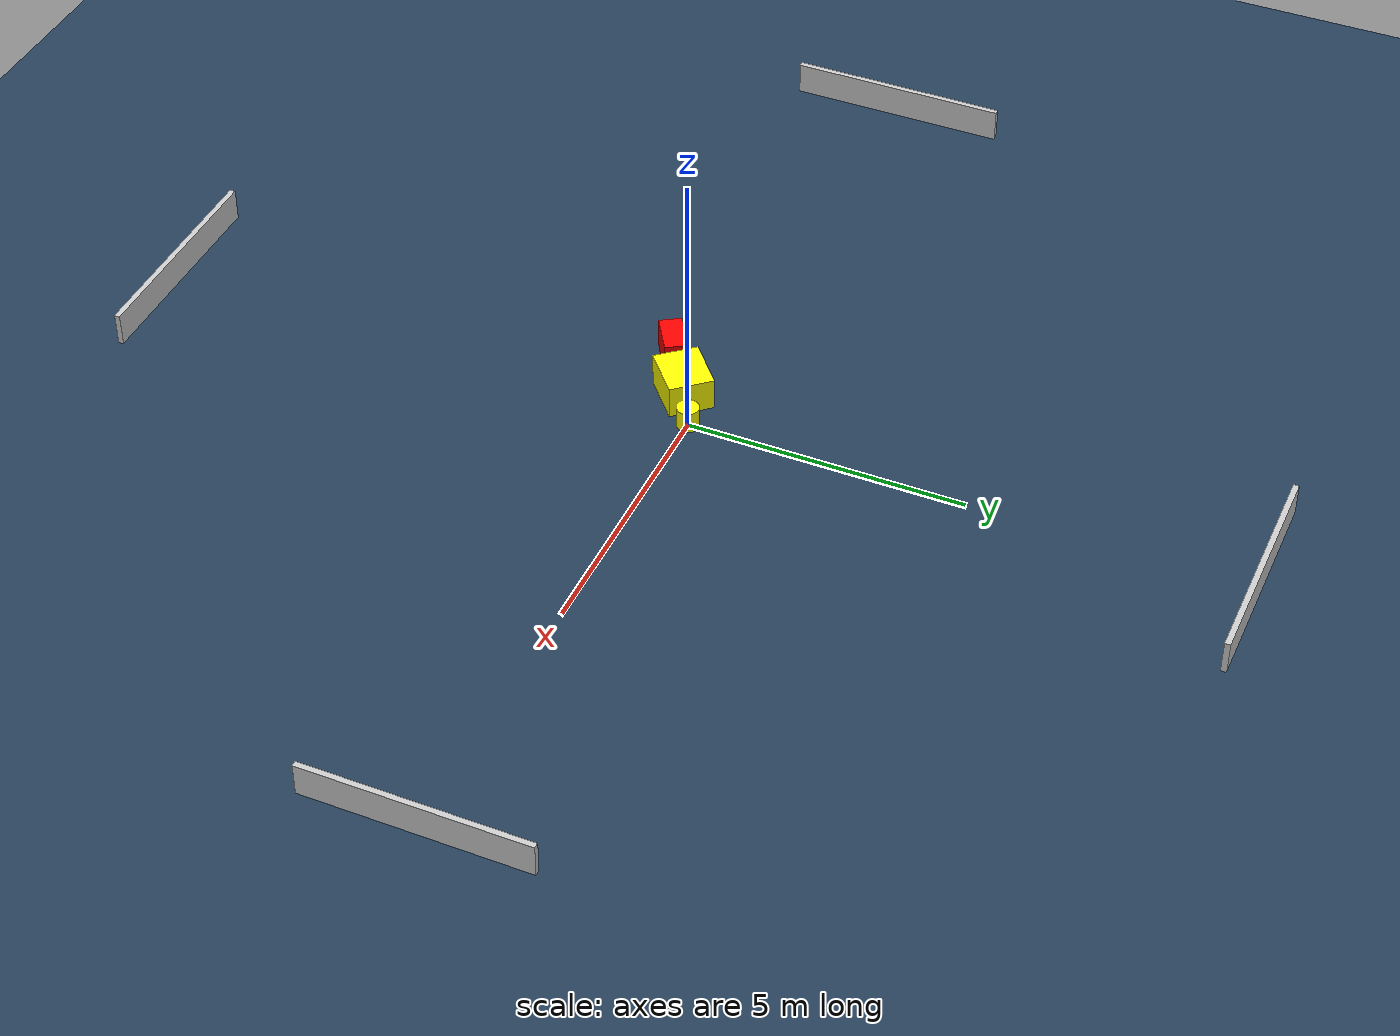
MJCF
<?xml version="1.0" ?>
<mujoco model="generated_environment">
  <option timestep="0.01" integrator="RK4" cone="elliptic"/>
  <default>
    <geom density="1"/>
  </default>
  <asset>
    <texture builtin="gradient" height="3072" name="skybox" rgb1="0.3 0.5 0.7" rgb2="0 0 0" type="skybox" width="512"/>
    <texture builtin="checker" height="300" name="groundplane" rgb1="0.2 0.3 0.4" rgb2="0.1 0.2 0.3" type="2d" width="300"/>
    <material name="groundplane" reflectance="0.2" texrepeat="5 5" texture="groundplane"/>
  </asset>
  <worldbody>
    <light dir="0 0 -1" directional="true" pos="0 0 1.5"/>
    <geom condim="3" friction="0.5 0.005 0.001" material="groundplane" name="floor" pos="0 0 0" size="0 0 0.05" type="plane"/>
    <body name="walls">
      <geom name="wall_1" condim="4" pos="-10.0 0.0 0.3" rgba="0.800000011920929 0.800000011920929 0.800000011920929 1.0" size="0.05 2.0 0.3" type="box"/>
      <geom name="wall_2" condim="4" pos="10.0 0.0 0.3" rgba="0.800000011920929 0.800000011920929 0.800000011920929 1.0" size="0.05 2.0 0.3" type="box"/>
      <geom name="wall_3" condim="4" pos="0.0 -10.0 0.3" rgba="0.800000011920929 0.800000011920929 0.800000011920929 1.0" size="2.0 0.05 0.3" type="box"/>
      <geom name="wall_4" condim="4" pos="0.0 10.0 0.3" rgba="0.800000011920929 0.800000011920929 0.800000011920929 1.0" size="2.0 0.05 0.3" type="box"/>
    </body>
    <body name="robot">
      <joint name="joint_x" type="slide" pos="0 0 0" axis="1 0 0"/>
      <joint name="joint_y" type="slide" pos="0 0 0" axis="0 1 0"/>
      <geom name="robot" type="cylinder" pos="0.0 0.0 0.2" size="0.2 0.2 0.0" mass="5.0" friction="1.0 0.005 0.0001" condim="4" rgba="1.0 1.0 0.0 1.0"/>
    </body>
    <body name="obstacle_1_movable">
      <geom name="obstacle_1_movable" condim="4" pos="-0.6924032356691536 -0.38624238417341267 0.3" euler="0 0 221.10797338118445" friction="0.0 0.005 0.001" rgba="1.0 1.0 0.0 1.0" size="0.47681773245462966 0.40658500783779095 0.3" type="box" mass="0.1"/>
      <joint type="free"/>
    </body>
    <body name="obstacle_2_static">
      <geom name="obstacle_2_static" condim="4" pos="-1.4930568070921655 -0.9326697528439186 0.3" euler="0 0 301.80599637389304" friction="0.0 0.005 0.001" rgba="1.0 0.0 0.0 1.0" size="0.2059708010898321 0.3789211364032917 0.3" type="box"/>
    </body>
  </worldbody>
  <actuator>
    <motor name="actuator_x" joint="joint_x" gear="1" ctrlrange="-1 1"/>
    <motor name="actuator_y" joint="joint_y" gear="1" ctrlrange="-1 1"/>
  </actuator>
</mujoco>
